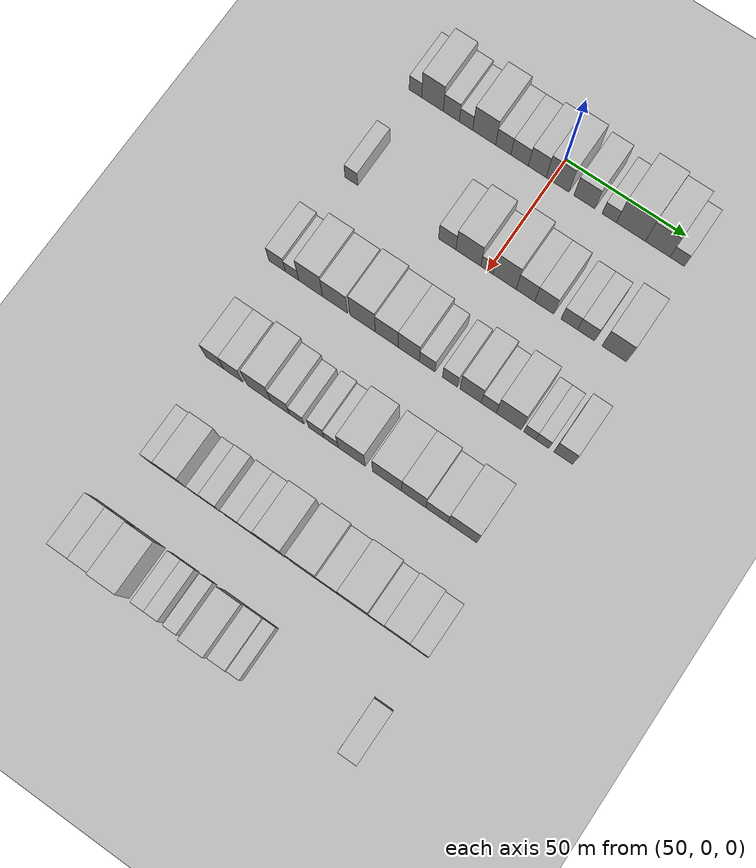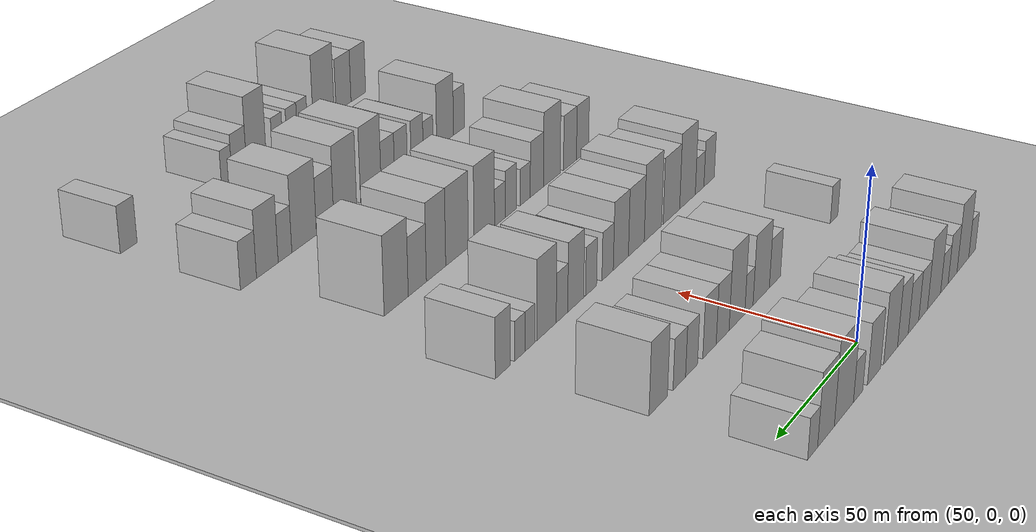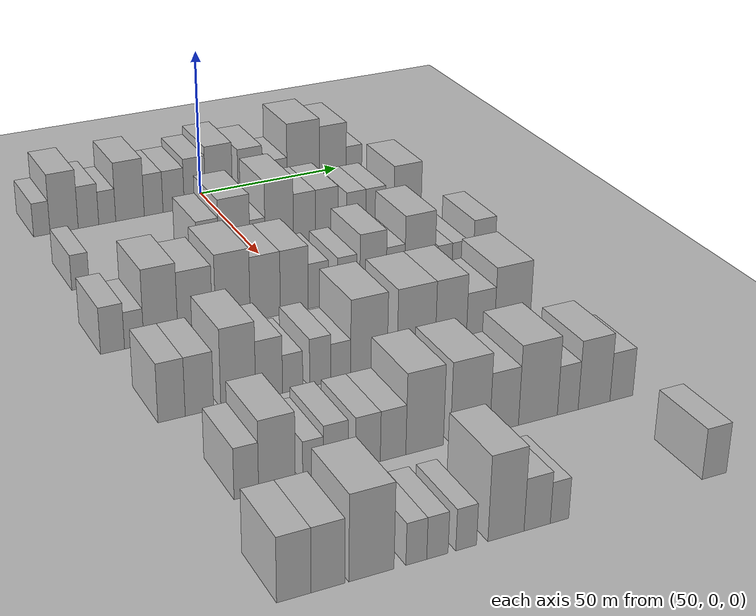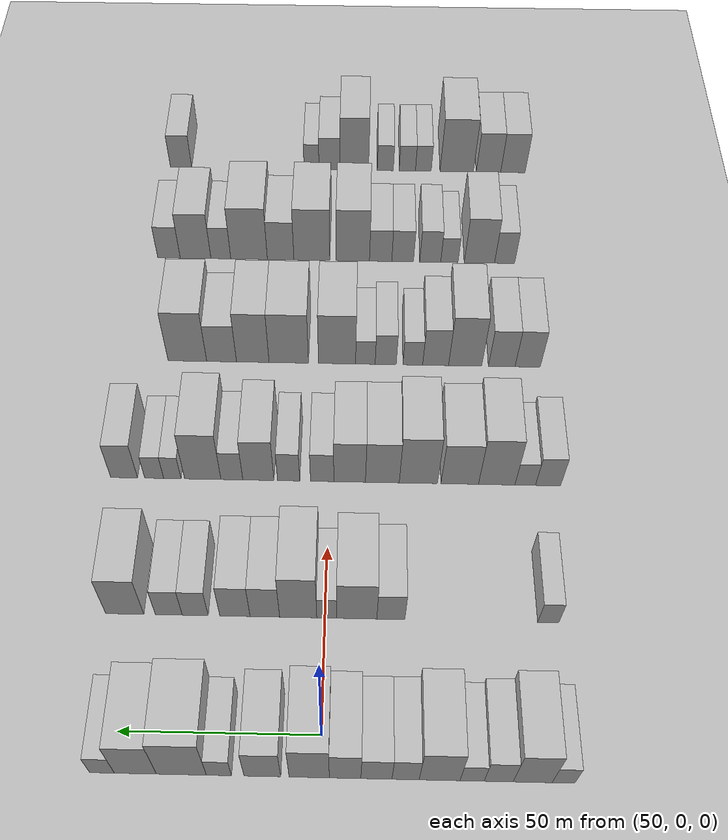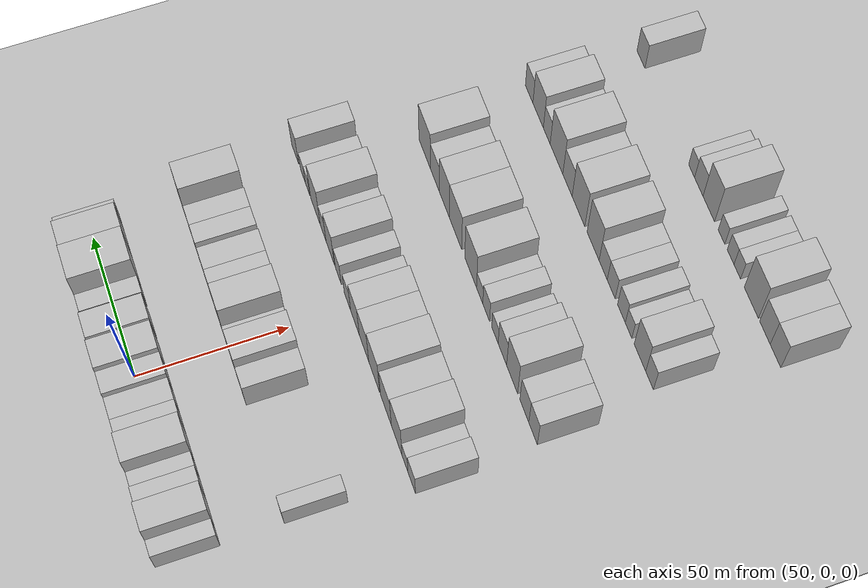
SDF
<sdf version="1.6">
 <world name="default">
  <include><name>ground_plane_1</name><uri>model://HANNAS_ground_plane</uri></include>
  <include>
   <name>ground_plane_2</name>
   <uri>model://HANNAS_ground_plane</uri>
   <pose>100 0 0  0 0 0</pose>
  </include>
  <model name="building_60">
   <static>1</static>
   <pose>50.0000 -57.6979 0 0.000000 0.000000 0.000000</pose>
   <link name="link">
    <pose>0 0 6.00 0 0 0</pose>
    <collision name="collision"><geometry><box><size>20.0000 5.3887 12.0000</size></box></geometry></collision>
    <visual name="visual">
     <cast_shadows>0</cast_shadows>
     <geometry><box><size>20.0000 5.3887 12.0000</size></box></geometry>
     <material>
      <script>
       <uri>model://HANNAS_wall/materials/scripts</uri>
       <uri>model://HANNAS_wall/materials/textures</uri>
       <name>vrc/HANNAS_wall</name>
      </script>
     </material>
    </visual>
   </link>
  </model>
  <model name="building_61">
   <static>1</static>
   <pose>50.0000 -50.3611 0 0.000000 0.000000 0.000000</pose>
   <link name="link">
    <pose>0 0 10.50 0 0 0</pose>
    <collision name="collision"><geometry><box><size>20.0000 9.2848 21.0000</size></box></geometry></collision>
    <visual name="visual">
     <cast_shadows>0</cast_shadows>
     <geometry><box><size>20.0000 9.2848 21.0000</size></box></geometry>
     <material>
      <script>
       <uri>model://HANNAS_wall/materials/scripts</uri>
       <uri>model://HANNAS_wall/materials/textures</uri>
       <name>vrc/HANNAS_wall</name>
      </script>
     </material>
    </visual>
   </link>
  </model>
  <model name="building_62">
   <static>1</static>
   <pose>50.0000 -42.2896 0 0.000000 0.000000 0.000000</pose>
   <link name="link">
    <pose>0 0 7.50 0 0 0</pose>
    <collision name="collision"><geometry><box><size>20.0000 6.8582 15.0000</size></box></geometry></collision>
    <visual name="visual">
     <cast_shadows>0</cast_shadows>
     <geometry><box><size>20.0000 6.8582 15.0000</size></box></geometry>
     <material>
      <script>
       <uri>model://HANNAS_wall/materials/scripts</uri>
       <uri>model://HANNAS_wall/materials/textures</uri>
       <name>vrc/HANNAS_wall</name>
      </script>
     </material>
    </visual>
   </link>
  </model>
  <model name="building_63">
   <static>1</static>
   <pose>50.0000 -35.9948 0 0.000000 0.000000 0.000000</pose>
   <link name="link">
    <pose>0 0 6.00 0 0 0</pose>
    <collision name="collision"><geometry><box><size>20.0000 5.7316 12.0000</size></box></geometry></collision>
    <visual name="visual">
     <cast_shadows>0</cast_shadows>
     <geometry><box><size>20.0000 5.7316 12.0000</size></box></geometry>
     <material>
      <script>
       <uri>model://HANNAS_wall/materials/scripts</uri>
       <uri>model://HANNAS_wall/materials/textures</uri>
       <name>vrc/HANNAS_wall</name>
      </script>
     </material>
    </visual>
   </link>
  </model>
  <model name="building_64">
   <static>1</static>
   <pose>50.0000 -28.2666 0 0.000000 0.000000 0.000000</pose>
   <link name="link">
    <pose>0 0 10.50 0 0 0</pose>
    <collision name="collision"><geometry><box><size>20.0000 9.7247 21.0000</size></box></geometry></collision>
    <visual name="visual">
     <cast_shadows>0</cast_shadows>
     <geometry><box><size>20.0000 9.7247 21.0000</size></box></geometry>
     <material>
      <script>
       <uri>model://HANNAS_wall/materials/scripts</uri>
       <uri>model://HANNAS_wall/materials/textures</uri>
       <name>vrc/HANNAS_wall</name>
      </script>
     </material>
    </visual>
   </link>
  </model>
  <model name="building_65">
   <static>1</static>
   <pose>50.0000 -20.1713 0 0.000000 0.000000 0.000000</pose>
   <link name="link">
    <pose>0 0 7.50 0 0 0</pose>
    <collision name="collision"><geometry><box><size>20.0000 6.4660 15.0000</size></box></geometry></collision>
    <visual name="visual">
     <cast_shadows>0</cast_shadows>
     <geometry><box><size>20.0000 6.4660 15.0000</size></box></geometry>
     <material>
      <script>
       <uri>model://HANNAS_wall/materials/scripts</uri>
       <uri>model://HANNAS_wall/materials/textures</uri>
       <name>vrc/HANNAS_wall</name>
      </script>
     </material>
    </visual>
   </link>
  </model>
  <model name="building_66">
   <static>1</static>
   <pose>50.0000 -13.2347 0 0.000000 0.000000 0.000000</pose>
   <link name="link">
    <pose>0 0 7.50 0 0 0</pose>
    <collision name="collision"><geometry><box><size>20.0000 7.4073 15.0000</size></box></geometry></collision>
    <visual name="visual">
     <cast_shadows>0</cast_shadows>
     <geometry><box><size>20.0000 7.4073 15.0000</size></box></geometry>
     <material>
      <script>
       <uri>model://HANNAS_wall/materials/scripts</uri>
       <uri>model://HANNAS_wall/materials/textures</uri>
       <name>vrc/HANNAS_wall</name>
      </script>
     </material>
    </visual>
   </link>
  </model>
  <model name="building_67">
   <static>1</static>
   <pose>50.0000 -5.7749 0 0.000000 0.000000 0.000000</pose>
   <link name="link">
    <pose>0 0 9.00 0 0 0</pose>
    <collision name="collision"><geometry><box><size>20.0000 7.5123 18.0000</size></box></geometry></collision>
    <visual name="visual">
     <cast_shadows>0</cast_shadows>
     <geometry><box><size>20.0000 7.5123 18.0000</size></box></geometry>
     <material>
      <script>
       <uri>model://HANNAS_wall/materials/scripts</uri>
       <uri>model://HANNAS_wall/materials/textures</uri>
       <name>vrc/HANNAS_wall</name>
      </script>
     </material>
    </visual>
   </link>
  </model>
  <model name="building_68">
   <static>1</static>
   <pose>50.0000 2.7636 0 0.000000 0.000000 0.000000</pose>
   <link name="link">
    <pose>0 0 10.50 0 0 0</pose>
    <collision name="collision"><geometry><box><size>20.0000 9.5645 21.0000</size></box></geometry></collision>
    <visual name="visual">
     <cast_shadows>0</cast_shadows>
     <geometry><box><size>20.0000 9.5645 21.0000</size></box></geometry>
     <material>
      <script>
       <uri>model://HANNAS_wall/materials/scripts</uri>
       <uri>model://HANNAS_wall/materials/textures</uri>
       <name>vrc/HANNAS_wall</name>
      </script>
     </material>
    </visual>
   </link>
  </model>
  <model name="building_69">
   <static>1</static>
   <pose>50.0000 13.9163 0 0.000000 0.000000 0.000000</pose>
   <link name="link">
    <pose>0 0 9.00 0 0 0</pose>
    <collision name="collision"><geometry><box><size>20.0000 8.7409 18.0000</size></box></geometry></collision>
    <visual name="visual">
     <cast_shadows>0</cast_shadows>
     <geometry><box><size>20.0000 8.7409 18.0000</size></box></geometry>
     <material>
      <script>
       <uri>model://HANNAS_wall/materials/scripts</uri>
       <uri>model://HANNAS_wall/materials/textures</uri>
       <name>vrc/HANNAS_wall</name>
      </script>
     </material>
    </visual>
   </link>
  </model>
  <model name="building_70">
   <static>1</static>
   <pose>50.0000 24.2809 0 0.000000 0.000000 0.000000</pose>
   <link name="link">
    <pose>0 0 6.00 0 0 0</pose>
    <collision name="collision"><geometry><box><size>20.0000 5.9884 12.0000</size></box></geometry></collision>
    <visual name="visual">
     <cast_shadows>0</cast_shadows>
     <geometry><box><size>20.0000 5.9884 12.0000</size></box></geometry>
     <material>
      <script>
       <uri>model://HANNAS_wall/materials/scripts</uri>
       <uri>model://HANNAS_wall/materials/textures</uri>
       <name>vrc/HANNAS_wall</name>
      </script>
     </material>
    </visual>
   </link>
  </model>
  <model name="building_71">
   <static>1</static>
   <pose>50.0000 33.2430 0 0.000000 0.000000 0.000000</pose>
   <link name="link">
    <pose>0 0 12.00 0 0 0</pose>
    <collision name="collision"><geometry><box><size>20.0000 11.9358 24.0000</size></box></geometry></collision>
    <visual name="visual">
     <cast_shadows>0</cast_shadows>
     <geometry><box><size>20.0000 11.9358 24.0000</size></box></geometry>
     <material>
      <script>
       <uri>model://HANNAS_wall/materials/scripts</uri>
       <uri>model://HANNAS_wall/materials/textures</uri>
       <name>vrc/HANNAS_wall</name>
      </script>
     </material>
    </visual>
   </link>
  </model>
  <model name="building_72">
   <static>1</static>
   <pose>50.0000 44.2532 0 0.000000 0.000000 0.000000</pose>
   <link name="link">
    <pose>0 0 10.50 0 0 0</pose>
    <collision name="collision"><geometry><box><size>20.0000 10.0846 21.0000</size></box></geometry></collision>
    <visual name="visual">
     <cast_shadows>0</cast_shadows>
     <geometry><box><size>20.0000 10.0846 21.0000</size></box></geometry>
     <material>
      <script>
       <uri>model://HANNAS_wall/materials/scripts</uri>
       <uri>model://HANNAS_wall/materials/textures</uri>
       <name>vrc/HANNAS_wall</name>
      </script>
     </material>
    </visual>
   </link>
  </model>
  <model name="building_73">
   <static>1</static>
   <pose>50.0000 52.2478 0 0.000000 0.000000 0.000000</pose>
   <link name="link">
    <pose>0 0 6.00 0 0 0</pose>
    <collision name="collision"><geometry><box><size>20.0000 5.9046 12.0000</size></box></geometry></collision>
    <visual name="visual">
     <cast_shadows>0</cast_shadows>
     <geometry><box><size>20.0000 5.9046 12.0000</size></box></geometry>
     <material>
      <script>
       <uri>model://HANNAS_wall/materials/scripts</uri>
       <uri>model://HANNAS_wall/materials/textures</uri>
       <name>vrc/HANNAS_wall</name>
      </script>
     </material>
    </visual>
   </link>
  </model>
  <model name="building_202">
   <static>1</static>
   <pose>90.0000 -57.4896 0 0.000000 0.000000 0.000000</pose>
   <link name="link">
    <pose>0 0 6.00 0 0 0</pose>
    <collision name="collision"><geometry><box><size>20.0000 5.4498 12.0000</size></box></geometry></collision>
    <visual name="visual">
     <cast_shadows>0</cast_shadows>
     <geometry><box><size>20.0000 5.4498 12.0000</size></box></geometry>
     <material>
      <script>
       <uri>model://HANNAS_wall/materials/scripts</uri>
       <uri>model://HANNAS_wall/materials/textures</uri>
       <name>vrc/HANNAS_wall</name>
      </script>
     </material>
    </visual>
   </link>
  </model>
  <model name="building_203">
   <static>1</static>
   <pose>90.0000 -16.8949 0 0.000000 0.000000 0.000000</pose>
   <link name="link">
    <pose>0 0 7.50 0 0 0</pose>
    <collision name="collision"><geometry><box><size>20.0000 7.2466 15.0000</size></box></geometry></collision>
    <visual name="visual">
     <cast_shadows>0</cast_shadows>
     <geometry><box><size>20.0000 7.2466 15.0000</size></box></geometry>
     <material>
      <script>
       <uri>model://HANNAS_wall/materials/scripts</uri>
       <uri>model://HANNAS_wall/materials/textures</uri>
       <name>vrc/HANNAS_wall</name>
      </script>
     </material>
    </visual>
   </link>
  </model>
  <model name="building_204">
   <static>1</static>
   <pose>90.0000 -8.0760 0 0.000000 0.000000 0.000000</pose>
   <link name="link">
    <pose>0 0 10.50 0 0 0</pose>
    <collision name="collision"><geometry><box><size>20.0000 10.3910 21.0000</size></box></geometry></collision>
    <visual name="visual">
     <cast_shadows>0</cast_shadows>
     <geometry><box><size>20.0000 10.3910 21.0000</size></box></geometry>
     <material>
      <script>
       <uri>model://HANNAS_wall/materials/scripts</uri>
       <uri>model://HANNAS_wall/materials/textures</uri>
       <name>vrc/HANNAS_wall</name>
      </script>
     </material>
    </visual>
   </link>
  </model>
  <model name="building_205">
   <static>1</static>
   <pose>90.0000 -0.3212 0 0.000000 0.000000 0.000000</pose>
   <link name="link">
    <pose>0 0 6.00 0 0 0</pose>
    <collision name="collision"><geometry><box><size>20.0000 5.1186 12.0000</size></box></geometry></collision>
    <visual name="visual">
     <cast_shadows>0</cast_shadows>
     <geometry><box><size>20.0000 5.1186 12.0000</size></box></geometry>
     <material>
      <script>
       <uri>model://HANNAS_wall/materials/scripts</uri>
       <uri>model://HANNAS_wall/materials/textures</uri>
       <name>vrc/HANNAS_wall</name>
      </script>
     </material>
    </visual>
   </link>
  </model>
  <model name="building_206">
   <static>1</static>
   <pose>90.0000 7.0396 0 0.000000 0.000000 0.000000</pose>
   <link name="link">
    <pose>0 0 12.00 0 0 0</pose>
    <collision name="collision"><geometry><box><size>20.0000 9.6031 24.0000</size></box></geometry></collision>
    <visual name="visual">
     <cast_shadows>0</cast_shadows>
     <geometry><box><size>20.0000 9.6031 24.0000</size></box></geometry>
     <material>
      <script>
       <uri>model://HANNAS_wall/materials/scripts</uri>
       <uri>model://HANNAS_wall/materials/textures</uri>
       <name>vrc/HANNAS_wall</name>
      </script>
     </material>
    </visual>
   </link>
  </model>
  <model name="building_207">
   <static>1</static>
   <pose>90.0000 15.6660 0 0.000000 0.000000 0.000000</pose>
   <link name="link">
    <pose>0 0 9.00 0 0 0</pose>
    <collision name="collision"><geometry><box><size>20.0000 7.6497 18.0000</size></box></geometry></collision>
    <visual name="visual">
     <cast_shadows>0</cast_shadows>
     <geometry><box><size>20.0000 7.6497 18.0000</size></box></geometry>
     <material>
      <script>
       <uri>model://HANNAS_wall/materials/scripts</uri>
       <uri>model://HANNAS_wall/materials/textures</uri>
       <name>vrc/HANNAS_wall</name>
      </script>
     </material>
    </visual>
   </link>
  </model>
  <model name="building_208">
   <static>1</static>
   <pose>90.0000 23.4075 0 0.000000 0.000000 0.000000</pose>
   <link name="link">
    <pose>0 0 9.00 0 0 0</pose>
    <collision name="collision"><geometry><box><size>20.0000 7.8333 18.0000</size></box></geometry></collision>
    <visual name="visual">
     <cast_shadows>0</cast_shadows>
     <geometry><box><size>20.0000 7.8333 18.0000</size></box></geometry>
     <material>
      <script>
       <uri>model://HANNAS_wall/materials/scripts</uri>
       <uri>model://HANNAS_wall/materials/textures</uri>
       <name>vrc/HANNAS_wall</name>
      </script>
     </material>
    </visual>
   </link>
  </model>
  <model name="building_209">
   <static>1</static>
   <pose>90.0000 33.6929 0 0.000000 0.000000 0.000000</pose>
   <link name="link">
    <pose>0 0 7.50 0 0 0</pose>
    <collision name="collision"><geometry><box><size>20.0000 6.7376 15.0000</size></box></geometry></collision>
    <visual name="visual">
     <cast_shadows>0</cast_shadows>
     <geometry><box><size>20.0000 6.7376 15.0000</size></box></geometry>
     <material>
      <script>
       <uri>model://HANNAS_wall/materials/scripts</uri>
       <uri>model://HANNAS_wall/materials/textures</uri>
       <name>vrc/HANNAS_wall</name>
      </script>
     </material>
    </visual>
   </link>
  </model>
  <model name="building_210">
   <static>1</static>
   <pose>90.0000 40.5470 0 0.000000 0.000000 0.000000</pose>
   <link name="link">
    <pose>0 0 7.50 0 0 0</pose>
    <collision name="collision"><geometry><box><size>20.0000 6.9706 15.0000</size></box></geometry></collision>
    <visual name="visual">
     <cast_shadows>0</cast_shadows>
     <geometry><box><size>20.0000 6.9706 15.0000</size></box></geometry>
     <material>
      <script>
       <uri>model://HANNAS_wall/materials/scripts</uri>
       <uri>model://HANNAS_wall/materials/textures</uri>
       <name>vrc/HANNAS_wall</name>
      </script>
     </material>
    </visual>
   </link>
  </model>
  <model name="building_211">
   <static>1</static>
   <pose>90.0000 51.9845 0 0.000000 0.000000 0.000000</pose>
   <link name="link">
    <pose>0 0 10.50 0 0 0</pose>
    <collision name="collision"><geometry><box><size>20.0000 9.9043 21.0000</size></box></geometry></collision>
    <visual name="visual">
     <cast_shadows>0</cast_shadows>
     <geometry><box><size>20.0000 9.9043 21.0000</size></box></geometry>
     <material>
      <script>
       <uri>model://HANNAS_wall/materials/scripts</uri>
       <uri>model://HANNAS_wall/materials/textures</uri>
       <name>vrc/HANNAS_wall</name>
      </script>
     </material>
    </visual>
   </link>
  </model>
  <model name="building_335">
   <static>1</static>
   <pose>130.0000 -60.8172 0 0.000000 0.000000 0.000000</pose>
   <link name="link">
    <pose>0 0 7.50 0 0 0</pose>
    <collision name="collision"><geometry><box><size>20.0000 6.9711 15.0000</size></box></geometry></collision>
    <visual name="visual">
     <cast_shadows>0</cast_shadows>
     <geometry><box><size>20.0000 6.9711 15.0000</size></box></geometry>
     <material>
      <script>
       <uri>model://HANNAS_wall/materials/scripts</uri>
       <uri>model://HANNAS_wall/materials/textures</uri>
       <name>vrc/HANNAS_wall</name>
      </script>
     </material>
    </visual>
   </link>
  </model>
  <model name="building_336">
   <static>1</static>
   <pose>130.0000 -54.4874 0 0.000000 0.000000 0.000000</pose>
   <link name="link">
    <pose>0 0 6.00 0 0 0</pose>
    <collision name="collision"><geometry><box><size>20.0000 5.6887 12.0000</size></box></geometry></collision>
    <visual name="visual">
     <cast_shadows>0</cast_shadows>
     <geometry><box><size>20.0000 5.6887 12.0000</size></box></geometry>
     <material>
      <script>
       <uri>model://HANNAS_wall/materials/scripts</uri>
       <uri>model://HANNAS_wall/materials/textures</uri>
       <name>vrc/HANNAS_wall</name>
      </script>
     </material>
    </visual>
   </link>
  </model>
  <model name="building_337">
   <static>1</static>
   <pose>130.0000 -46.5720 0 0.000000 0.000000 0.000000</pose>
   <link name="link">
    <pose>0 0 12.00 0 0 0</pose>
    <collision name="collision"><geometry><box><size>20.0000 10.1422 24.0000</size></box></geometry></collision>
    <visual name="visual">
     <cast_shadows>0</cast_shadows>
     <geometry><box><size>20.0000 10.1422 24.0000</size></box></geometry>
     <material>
      <script>
       <uri>model://HANNAS_wall/materials/scripts</uri>
       <uri>model://HANNAS_wall/materials/textures</uri>
       <name>vrc/HANNAS_wall</name>
      </script>
     </material>
    </visual>
   </link>
  </model>
  <model name="building_338">
   <static>1</static>
   <pose>130.0000 -36.2806 0 0.000000 0.000000 0.000000</pose>
   <link name="link">
    <pose>0 0 10.50 0 0 0</pose>
    <collision name="collision"><geometry><box><size>20.0000 10.4406 21.0000</size></box></geometry></collision>
    <visual name="visual">
     <cast_shadows>0</cast_shadows>
     <geometry><box><size>20.0000 10.4406 21.0000</size></box></geometry>
     <material>
      <script>
       <uri>model://HANNAS_wall/materials/scripts</uri>
       <uri>model://HANNAS_wall/materials/textures</uri>
       <name>vrc/HANNAS_wall</name>
      </script>
     </material>
    </visual>
   </link>
  </model>
  <model name="building_339">
   <static>1</static>
   <pose>130.0000 -24.7656 0 0.000000 0.000000 0.000000</pose>
   <link name="link">
    <pose>0 0 12.00 0 0 0</pose>
    <collision name="collision"><geometry><box><size>20.0000 10.5893 24.0000</size></box></geometry></collision>
    <visual name="visual">
     <cast_shadows>0</cast_shadows>
     <geometry><box><size>20.0000 10.5893 24.0000</size></box></geometry>
     <material>
      <script>
       <uri>model://HANNAS_wall/materials/scripts</uri>
       <uri>model://HANNAS_wall/materials/textures</uri>
       <name>vrc/HANNAS_wall</name>
      </script>
     </material>
    </visual>
   </link>
  </model>
  <model name="building_340">
   <static>1</static>
   <pose>130.0000 -14.7515 0 0.000000 0.000000 0.000000</pose>
   <link name="link">
    <pose>0 0 10.50 0 0 0</pose>
    <collision name="collision"><geometry><box><size>20.0000 9.4389 21.0000</size></box></geometry></collision>
    <visual name="visual">
     <cast_shadows>0</cast_shadows>
     <geometry><box><size>20.0000 9.4389 21.0000</size></box></geometry>
     <material>
      <script>
       <uri>model://HANNAS_wall/materials/scripts</uri>
       <uri>model://HANNAS_wall/materials/textures</uri>
       <name>vrc/HANNAS_wall</name>
      </script>
     </material>
    </visual>
   </link>
  </model>
  <model name="building_341">
   <static>1</static>
   <pose>130.0000 -5.6271 0 0.000000 0.000000 0.000000</pose>
   <link name="link">
    <pose>0 0 10.50 0 0 0</pose>
    <collision name="collision"><geometry><box><size>20.0000 8.8099 21.0000</size></box></geometry></collision>
    <visual name="visual">
     <cast_shadows>0</cast_shadows>
     <geometry><box><size>20.0000 8.8099 21.0000</size></box></geometry>
     <material>
      <script>
       <uri>model://HANNAS_wall/materials/scripts</uri>
       <uri>model://HANNAS_wall/materials/textures</uri>
       <name>vrc/HANNAS_wall</name>
      </script>
     </material>
    </visual>
   </link>
  </model>
  <model name="building_342">
   <static>1</static>
   <pose>130.0000 2.0201 0 0.000000 0.000000 0.000000</pose>
   <link name="link">
    <pose>0 0 7.50 0 0 0</pose>
    <collision name="collision"><geometry><box><size>20.0000 6.4845 15.0000</size></box></geometry></collision>
    <visual name="visual">
     <cast_shadows>0</cast_shadows>
     <geometry><box><size>20.0000 6.4845 15.0000</size></box></geometry>
     <material>
      <script>
       <uri>model://HANNAS_wall/materials/scripts</uri>
       <uri>model://HANNAS_wall/materials/textures</uri>
       <name>vrc/HANNAS_wall</name>
      </script>
     </material>
    </visual>
   </link>
  </model>
  <model name="building_343">
   <static>1</static>
   <pose>130.0000 11.3536 0 0.000000 0.000000 0.000000</pose>
   <link name="link">
    <pose>0 0 7.50 0 0 0</pose>
    <collision name="collision"><geometry><box><size>20.0000 6.1825 15.0000</size></box></geometry></collision>
    <visual name="visual">
     <cast_shadows>0</cast_shadows>
     <geometry><box><size>20.0000 6.1825 15.0000</size></box></geometry>
     <material>
      <script>
       <uri>model://HANNAS_wall/materials/scripts</uri>
       <uri>model://HANNAS_wall/materials/textures</uri>
       <name>vrc/HANNAS_wall</name>
      </script>
     </material>
    </visual>
   </link>
  </model>
  <model name="building_344">
   <static>1</static>
   <pose>130.0000 19.7942 0 0.000000 0.000000 0.000000</pose>
   <link name="link">
    <pose>0 0 10.50 0 0 0</pose>
    <collision name="collision"><geometry><box><size>20.0000 8.6985 21.0000</size></box></geometry></collision>
    <visual name="visual">
     <cast_shadows>0</cast_shadows>
     <geometry><box><size>20.0000 8.6985 21.0000</size></box></geometry>
     <material>
      <script>
       <uri>model://HANNAS_wall/materials/scripts</uri>
       <uri>model://HANNAS_wall/materials/textures</uri>
       <name>vrc/HANNAS_wall</name>
      </script>
     </material>
    </visual>
   </link>
  </model>
  <model name="building_345">
   <static>1</static>
   <pose>130.0000 27.2043 0 0.000000 0.000000 0.000000</pose>
   <link name="link">
    <pose>0 0 7.50 0 0 0</pose>
    <collision name="collision"><geometry><box><size>20.0000 6.1217 15.0000</size></box></geometry></collision>
    <visual name="visual">
     <cast_shadows>0</cast_shadows>
     <geometry><box><size>20.0000 6.1217 15.0000</size></box></geometry>
     <material>
      <script>
       <uri>model://HANNAS_wall/materials/scripts</uri>
       <uri>model://HANNAS_wall/materials/textures</uri>
       <name>vrc/HANNAS_wall</name>
      </script>
     </material>
    </visual>
   </link>
  </model>
  <model name="building_346">
   <static>1</static>
   <pose>130.0000 35.3455 0 0.000000 0.000000 0.000000</pose>
   <link name="link">
    <pose>0 0 12.00 0 0 0</pose>
    <collision name="collision"><geometry><box><size>20.0000 10.1606 24.0000</size></box></geometry></collision>
    <visual name="visual">
     <cast_shadows>0</cast_shadows>
     <geometry><box><size>20.0000 10.1606 24.0000</size></box></geometry>
     <material>
      <script>
       <uri>model://HANNAS_wall/materials/scripts</uri>
       <uri>model://HANNAS_wall/materials/textures</uri>
       <name>vrc/HANNAS_wall</name>
      </script>
     </material>
    </visual>
   </link>
  </model>
  <model name="building_347">
   <static>1</static>
   <pose>130.0000 43.8545 0 0.000000 0.000000 0.000000</pose>
   <link name="link">
    <pose>0 0 6.00 0 0 0</pose>
    <collision name="collision"><geometry><box><size>20.0000 4.8574 12.0000</size></box></geometry></collision>
    <visual name="visual">
     <cast_shadows>0</cast_shadows>
     <geometry><box><size>20.0000 4.8574 12.0000</size></box></geometry>
     <material>
      <script>
       <uri>model://HANNAS_wall/materials/scripts</uri>
       <uri>model://HANNAS_wall/materials/textures</uri>
       <name>vrc/HANNAS_wall</name>
      </script>
     </material>
    </visual>
   </link>
  </model>
  <model name="building_348">
   <static>1</static>
   <pose>130.0000 48.9297 0 0.000000 0.000000 0.000000</pose>
   <link name="link">
    <pose>0 0 6.00 0 0 0</pose>
    <collision name="collision"><geometry><box><size>20.0000 5.2930 12.0000</size></box></geometry></collision>
    <visual name="visual">
     <cast_shadows>0</cast_shadows>
     <geometry><box><size>20.0000 5.2930 12.0000</size></box></geometry>
     <material>
      <script>
       <uri>model://HANNAS_wall/materials/scripts</uri>
       <uri>model://HANNAS_wall/materials/textures</uri>
       <name>vrc/HANNAS_wall</name>
      </script>
     </material>
    </visual>
   </link>
  </model>
  <model name="building_349">
   <static>1</static>
   <pose>130.0000 57.3346 0 0.000000 0.000000 0.000000</pose>
   <link name="link">
    <pose>0 0 9.00 0 0 0</pose>
    <collision name="collision"><geometry><box><size>20.0000 7.5169 18.0000</size></box></geometry></collision>
    <visual name="visual">
     <cast_shadows>0</cast_shadows>
     <geometry><box><size>20.0000 7.5169 18.0000</size></box></geometry>
     <material>
      <script>
       <uri>model://HANNAS_wall/materials/scripts</uri>
       <uri>model://HANNAS_wall/materials/textures</uri>
       <name>vrc/HANNAS_wall</name>
      </script>
     </material>
    </visual>
   </link>
  </model>
  <model name="building_474">
   <static>1</static>
   <pose>170.0000 -58.1395 0 0.000000 0.000000 0.000000</pose>
   <link name="link">
    <pose>0 0 9.00 0 0 0</pose>
    <collision name="collision"><geometry><box><size>20.0000 7.5047 18.0000</size></box></geometry></collision>
    <visual name="visual">
     <cast_shadows>0</cast_shadows>
     <geometry><box><size>20.0000 7.5047 18.0000</size></box></geometry>
     <material>
      <script>
       <uri>model://HANNAS_wall/materials/scripts</uri>
       <uri>model://HANNAS_wall/materials/textures</uri>
       <name>vrc/HANNAS_wall</name>
      </script>
     </material>
    </visual>
   </link>
  </model>
  <model name="building_475">
   <static>1</static>
   <pose>170.0000 -50.4210 0 0.000000 0.000000 0.000000</pose>
   <link name="link">
    <pose>0 0 9.00 0 0 0</pose>
    <collision name="collision"><geometry><box><size>20.0000 7.9324 18.0000</size></box></geometry></collision>
    <visual name="visual">
     <cast_shadows>0</cast_shadows>
     <geometry><box><size>20.0000 7.9324 18.0000</size></box></geometry>
     <material>
      <script>
       <uri>model://HANNAS_wall/materials/scripts</uri>
       <uri>model://HANNAS_wall/materials/textures</uri>
       <name>vrc/HANNAS_wall</name>
      </script>
     </material>
    </visual>
   </link>
  </model>
  <model name="building_476">
   <static>1</static>
   <pose>170.0000 -39.5075 0 0.000000 0.000000 0.000000</pose>
   <link name="link">
    <pose>0 0 12.00 0 0 0</pose>
    <collision name="collision"><geometry><box><size>20.0000 9.8945 24.0000</size></box></geometry></collision>
    <visual name="visual">
     <cast_shadows>0</cast_shadows>
     <geometry><box><size>20.0000 9.8945 24.0000</size></box></geometry>
     <material>
      <script>
       <uri>model://HANNAS_wall/materials/scripts</uri>
       <uri>model://HANNAS_wall/materials/textures</uri>
       <name>vrc/HANNAS_wall</name>
      </script>
     </material>
    </visual>
   </link>
  </model>
  <model name="building_477">
   <static>1</static>
   <pose>170.0000 -30.7029 0 0.000000 0.000000 0.000000</pose>
   <link name="link">
    <pose>0 0 9.00 0 0 0</pose>
    <collision name="collision"><geometry><box><size>20.0000 7.7148 18.0000</size></box></geometry></collision>
    <visual name="visual">
     <cast_shadows>0</cast_shadows>
     <geometry><box><size>20.0000 7.7148 18.0000</size></box></geometry>
     <material>
      <script>
       <uri>model://HANNAS_wall/materials/scripts</uri>
       <uri>model://HANNAS_wall/materials/textures</uri>
       <name>vrc/HANNAS_wall</name>
      </script>
     </material>
    </visual>
   </link>
  </model>
  <model name="building_478">
   <static>1</static>
   <pose>170.0000 -23.9001 0 0.000000 0.000000 0.000000</pose>
   <link name="link">
    <pose>0 0 6.00 0 0 0</pose>
    <collision name="collision"><geometry><box><size>20.0000 5.8907 12.0000</size></box></geometry></collision>
    <visual name="visual">
     <cast_shadows>0</cast_shadows>
     <geometry><box><size>20.0000 5.8907 12.0000</size></box></geometry>
     <material>
      <script>
       <uri>model://HANNAS_wall/materials/scripts</uri>
       <uri>model://HANNAS_wall/materials/textures</uri>
       <name>vrc/HANNAS_wall</name>
      </script>
     </material>
    </visual>
   </link>
  </model>
  <model name="building_479">
   <static>1</static>
   <pose>170.0000 -15.8050 0 0.000000 0.000000 0.000000</pose>
   <link name="link">
    <pose>0 0 7.50 0 0 0</pose>
    <collision name="collision"><geometry><box><size>20.0000 6.2994 15.0000</size></box></geometry></collision>
    <visual name="visual">
     <cast_shadows>0</cast_shadows>
     <geometry><box><size>20.0000 6.2994 15.0000</size></box></geometry>
     <material>
      <script>
       <uri>model://HANNAS_wall/materials/scripts</uri>
       <uri>model://HANNAS_wall/materials/textures</uri>
       <name>vrc/HANNAS_wall</name>
      </script>
     </material>
    </visual>
   </link>
  </model>
  <model name="building_480">
   <static>1</static>
   <pose>170.0000 -9.7315 0 0.000000 0.000000 0.000000</pose>
   <link name="link">
    <pose>0 0 6.00 0 0 0</pose>
    <collision name="collision"><geometry><box><size>20.0000 5.8476 12.0000</size></box></geometry></collision>
    <visual name="visual">
     <cast_shadows>0</cast_shadows>
     <geometry><box><size>20.0000 5.8476 12.0000</size></box></geometry>
     <material>
      <script>
       <uri>model://HANNAS_wall/materials/scripts</uri>
       <uri>model://HANNAS_wall/materials/textures</uri>
       <name>vrc/HANNAS_wall</name>
      </script>
     </material>
    </visual>
   </link>
  </model>
  <model name="building_481">
   <static>1</static>
   <pose>170.0000 -1.2676 0 0.000000 0.000000 0.000000</pose>
   <link name="link">
    <pose>0 0 12.00 0 0 0</pose>
    <collision name="collision"><geometry><box><size>20.0000 11.0801 24.0000</size></box></geometry></collision>
    <visual name="visual">
     <cast_shadows>0</cast_shadows>
     <geometry><box><size>20.0000 11.0801 24.0000</size></box></geometry>
     <material>
      <script>
       <uri>model://HANNAS_wall/materials/scripts</uri>
       <uri>model://HANNAS_wall/materials/textures</uri>
       <name>vrc/HANNAS_wall</name>
      </script>
     </material>
    </visual>
   </link>
  </model>
  <model name="building_482">
   <static>1</static>
   <pose>170.0000 13.1661 0 0.000000 0.000000 0.000000</pose>
   <link name="link">
    <pose>0 0 12.00 0 0 0</pose>
    <collision name="collision"><geometry><box><size>20.0000 11.7874 24.0000</size></box></geometry></collision>
    <visual name="visual">
     <cast_shadows>0</cast_shadows>
     <geometry><box><size>20.0000 11.7874 24.0000</size></box></geometry>
     <material>
      <script>
       <uri>model://HANNAS_wall/materials/scripts</uri>
       <uri>model://HANNAS_wall/materials/textures</uri>
       <name>vrc/HANNAS_wall</name>
      </script>
     </material>
    </visual>
   </link>
  </model>
  <model name="building_483">
   <static>1</static>
   <pose>170.0000 23.9355 0 0.000000 0.000000 0.000000</pose>
   <link name="link">
    <pose>0 0 12.00 0 0 0</pose>
    <collision name="collision"><geometry><box><size>20.0000 9.7513 24.0000</size></box></geometry></collision>
    <visual name="visual">
     <cast_shadows>0</cast_shadows>
     <geometry><box><size>20.0000 9.7513 24.0000</size></box></geometry>
     <material>
      <script>
       <uri>model://HANNAS_wall/materials/scripts</uri>
       <uri>model://HANNAS_wall/materials/textures</uri>
       <name>vrc/HANNAS_wall</name>
      </script>
     </material>
    </visual>
   </link>
  </model>
  <model name="building_484">
   <static>1</static>
   <pose>170.0000 33.2792 0 0.000000 0.000000 0.000000</pose>
   <link name="link">
    <pose>0 0 9.00 0 0 0</pose>
    <collision name="collision"><geometry><box><size>20.0000 8.9362 18.0000</size></box></geometry></collision>
    <visual name="visual">
     <cast_shadows>0</cast_shadows>
     <geometry><box><size>20.0000 8.9362 18.0000</size></box></geometry>
     <material>
      <script>
       <uri>model://HANNAS_wall/materials/scripts</uri>
       <uri>model://HANNAS_wall/materials/textures</uri>
       <name>vrc/HANNAS_wall</name>
      </script>
     </material>
    </visual>
   </link>
  </model>
  <model name="building_485">
   <static>1</static>
   <pose>170.0000 43.5351 0 0.000000 0.000000 0.000000</pose>
   <link name="link">
    <pose>0 0 12.00 0 0 0</pose>
    <collision name="collision"><geometry><box><size>20.0000 11.5755 24.0000</size></box></geometry></collision>
    <visual name="visual">
     <cast_shadows>0</cast_shadows>
     <geometry><box><size>20.0000 11.5755 24.0000</size></box></geometry>
     <material>
      <script>
       <uri>model://HANNAS_wall/materials/scripts</uri>
       <uri>model://HANNAS_wall/materials/textures</uri>
       <name>vrc/HANNAS_wall</name>
      </script>
     </material>
    </visual>
   </link>
  </model>
  <model name="building_607">
   <static>1</static>
   <pose>210.0000 -53.7948 0 0.000000 0.000000 0.000000</pose>
   <link name="link">
    <pose>0 0 7.50 0 0 0</pose>
    <collision name="collision"><geometry><box><size>20.0000 6.3923 15.0000</size></box></geometry></collision>
    <visual name="visual">
     <cast_shadows>0</cast_shadows>
     <geometry><box><size>20.0000 6.3923 15.0000</size></box></geometry>
     <material>
      <script>
       <uri>model://HANNAS_wall/materials/scripts</uri>
       <uri>model://HANNAS_wall/materials/textures</uri>
       <name>vrc/HANNAS_wall</name>
      </script>
     </material>
    </visual>
   </link>
  </model>
  <model name="building_608">
   <static>1</static>
   <pose>210.0000 -45.7830 0 0.000000 0.000000 0.000000</pose>
   <link name="link">
    <pose>0 0 10.50 0 0 0</pose>
    <collision name="collision"><geometry><box><size>20.0000 9.6313 21.0000</size></box></geometry></collision>
    <visual name="visual">
     <cast_shadows>0</cast_shadows>
     <geometry><box><size>20.0000 9.6313 21.0000</size></box></geometry>
     <material>
      <script>
       <uri>model://HANNAS_wall/materials/scripts</uri>
       <uri>model://HANNAS_wall/materials/textures</uri>
       <name>vrc/HANNAS_wall</name>
      </script>
     </material>
    </visual>
   </link>
  </model>
  <model name="building_609">
   <static>1</static>
   <pose>210.0000 -36.2099 0 0.000000 0.000000 0.000000</pose>
   <link name="link">
    <pose>0 0 6.00 0 0 0</pose>
    <collision name="collision"><geometry><box><size>20.0000 5.5149 12.0000</size></box></geometry></collision>
    <visual name="visual">
     <cast_shadows>0</cast_shadows>
     <geometry><box><size>20.0000 5.5149 12.0000</size></box></geometry>
     <material>
      <script>
       <uri>model://HANNAS_wall/materials/scripts</uri>
       <uri>model://HANNAS_wall/materials/textures</uri>
       <name>vrc/HANNAS_wall</name>
      </script>
     </material>
    </visual>
   </link>
  </model>
  <model name="building_610">
   <static>1</static>
   <pose>210.0000 -30.1129 0 0.000000 0.000000 0.000000</pose>
   <link name="link">
    <pose>0 0 7.50 0 0 0</pose>
    <collision name="collision"><geometry><box><size>20.0000 6.6792 15.0000</size></box></geometry></collision>
    <visual name="visual">
     <cast_shadows>0</cast_shadows>
     <geometry><box><size>20.0000 6.6792 15.0000</size></box></geometry>
     <material>
      <script>
       <uri>model://HANNAS_wall/materials/scripts</uri>
       <uri>model://HANNAS_wall/materials/textures</uri>
       <name>vrc/HANNAS_wall</name>
      </script>
     </material>
    </visual>
   </link>
  </model>
  <model name="building_611">
   <static>1</static>
   <pose>210.0000 -21.3162 0 0.000000 0.000000 0.000000</pose>
   <link name="link">
    <pose>0 0 7.50 0 0 0</pose>
    <collision name="collision"><geometry><box><size>20.0000 6.9142 15.0000</size></box></geometry></collision>
    <visual name="visual">
     <cast_shadows>0</cast_shadows>
     <geometry><box><size>20.0000 6.9142 15.0000</size></box></geometry>
     <material>
      <script>
       <uri>model://HANNAS_wall/materials/scripts</uri>
       <uri>model://HANNAS_wall/materials/textures</uri>
       <name>vrc/HANNAS_wall</name>
      </script>
     </material>
    </visual>
   </link>
  </model>
  <model name="building_612">
   <static>1</static>
   <pose>210.0000 -14.2997 0 0.000000 0.000000 0.000000</pose>
   <link name="link">
    <pose>0 0 7.50 0 0 0</pose>
    <collision name="collision"><geometry><box><size>20.0000 7.1188 15.0000</size></box></geometry></collision>
    <visual name="visual">
     <cast_shadows>0</cast_shadows>
     <geometry><box><size>20.0000 7.1188 15.0000</size></box></geometry>
     <material>
      <script>
       <uri>model://HANNAS_wall/materials/scripts</uri>
       <uri>model://HANNAS_wall/materials/textures</uri>
       <name>vrc/HANNAS_wall</name>
      </script>
     </material>
    </visual>
   </link>
  </model>
  <model name="building_613">
   <static>1</static>
   <pose>210.0000 -5.4140 0 0.000000 0.000000 0.000000</pose>
   <link name="link">
    <pose>0 0 12.00 0 0 0</pose>
    <collision name="collision"><geometry><box><size>20.0000 10.6525 24.0000</size></box></geometry></collision>
    <visual name="visual">
     <cast_shadows>0</cast_shadows>
     <geometry><box><size>20.0000 10.6525 24.0000</size></box></geometry>
     <material>
      <script>
       <uri>model://HANNAS_wall/materials/scripts</uri>
       <uri>model://HANNAS_wall/materials/textures</uri>
       <name>vrc/HANNAS_wall</name>
      </script>
     </material>
    </visual>
   </link>
  </model>
  <model name="building_614">
   <static>1</static>
   <pose>210.0000 7.6380 0 0.000000 0.000000 0.000000</pose>
   <link name="link">
    <pose>0 0 12.00 0 0 0</pose>
    <collision name="collision"><geometry><box><size>20.0000 11.4515 24.0000</size></box></geometry></collision>
    <visual name="visual">
     <cast_shadows>0</cast_shadows>
     <geometry><box><size>20.0000 11.4515 24.0000</size></box></geometry>
     <material>
      <script>
       <uri>model://HANNAS_wall/materials/scripts</uri>
       <uri>model://HANNAS_wall/materials/textures</uri>
       <name>vrc/HANNAS_wall</name>
      </script>
     </material>
    </visual>
   </link>
  </model>
  <model name="building_615">
   <static>1</static>
   <pose>210.0000 17.6051 0 0.000000 0.000000 0.000000</pose>
   <link name="link">
    <pose>0 0 9.00 0 0 0</pose>
    <collision name="collision"><geometry><box><size>20.0000 8.4827 18.0000</size></box></geometry></collision>
    <visual name="visual">
     <cast_shadows>0</cast_shadows>
     <geometry><box><size>20.0000 8.4827 18.0000</size></box></geometry>
     <material>
      <script>
       <uri>model://HANNAS_wall/materials/scripts</uri>
       <uri>model://HANNAS_wall/materials/textures</uri>
       <name>vrc/HANNAS_wall</name>
      </script>
     </material>
    </visual>
   </link>
  </model>
  <model name="building_616">
   <static>1</static>
   <pose>210.0000 27.7015 0 0.000000 0.000000 0.000000</pose>
   <link name="link">
    <pose>0 0 12.00 0 0 0</pose>
    <collision name="collision"><geometry><box><size>20.0000 11.7101 24.0000</size></box></geometry></collision>
    <visual name="visual">
     <cast_shadows>0</cast_shadows>
     <geometry><box><size>20.0000 11.7101 24.0000</size></box></geometry>
     <material>
      <script>
       <uri>model://HANNAS_wall/materials/scripts</uri>
       <uri>model://HANNAS_wall/materials/textures</uri>
       <name>vrc/HANNAS_wall</name>
      </script>
     </material>
    </visual>
   </link>
  </model>
  <model name="building_617">
   <static>1</static>
   <pose>210.0000 36.7345 0 0.000000 0.000000 0.000000</pose>
   <link name="link">
    <pose>0 0 7.50 0 0 0</pose>
    <collision name="collision"><geometry><box><size>20.0000 6.3559 15.0000</size></box></geometry></collision>
    <visual name="visual">
     <cast_shadows>0</cast_shadows>
     <geometry><box><size>20.0000 6.3559 15.0000</size></box></geometry>
     <material>
      <script>
       <uri>model://HANNAS_wall/materials/scripts</uri>
       <uri>model://HANNAS_wall/materials/textures</uri>
       <name>vrc/HANNAS_wall</name>
      </script>
     </material>
    </visual>
   </link>
  </model>
  <model name="building_618">
   <static>1</static>
   <pose>210.0000 44.8343 0 0.000000 0.000000 0.000000</pose>
   <link name="link">
    <pose>0 0 10.50 0 0 0</pose>
    <collision name="collision"><geometry><box><size>20.0000 9.8438 21.0000</size></box></geometry></collision>
    <visual name="visual">
     <cast_shadows>0</cast_shadows>
     <geometry><box><size>20.0000 9.8438 21.0000</size></box></geometry>
     <material>
      <script>
       <uri>model://HANNAS_wall/materials/scripts</uri>
       <uri>model://HANNAS_wall/materials/textures</uri>
       <name>vrc/HANNAS_wall</name>
      </script>
     </material>
    </visual>
   </link>
  </model>
  <model name="building_619">
   <static>1</static>
   <pose>210.0000 53.3548 0 0.000000 0.000000 0.000000</pose>
   <link name="link">
    <pose>0 0 7.50 0 0 0</pose>
    <collision name="collision"><geometry><box><size>20.0000 7.1971 15.0000</size></box></geometry></collision>
    <visual name="visual">
     <cast_shadows>0</cast_shadows>
     <geometry><box><size>20.0000 7.1971 15.0000</size></box></geometry>
     <material>
      <script>
       <uri>model://HANNAS_wall/materials/scripts</uri>
       <uri>model://HANNAS_wall/materials/textures</uri>
       <name>vrc/HANNAS_wall</name>
      </script>
     </material>
    </visual>
   </link>
  </model>
  <model name="building_746">
   <static>1</static>
   <pose>250.0000 -59.1319 0 0.000000 0.000000 0.000000</pose>
   <link name="link">
    <pose>0 0 9.00 0 0 0</pose>
    <collision name="collision"><geometry><box><size>20.0000 8.2400 18.0000</size></box></geometry></collision>
    <visual name="visual">
     <cast_shadows>0</cast_shadows>
     <geometry><box><size>20.0000 8.2400 18.0000</size></box></geometry>
     <material>
      <script>
       <uri>model://HANNAS_wall/materials/scripts</uri>
       <uri>model://HANNAS_wall/materials/textures</uri>
       <name>vrc/HANNAS_wall</name>
      </script>
     </material>
    </visual>
   </link>
  </model>
  <model name="building_747">
   <static>1</static>
   <pose>250.0000 -50.8765 0 0.000000 0.000000 0.000000</pose>
   <link name="link">
    <pose>0 0 9.00 0 0 0</pose>
    <collision name="collision"><geometry><box><size>20.0000 8.2709 18.0000</size></box></geometry></collision>
    <visual name="visual">
     <cast_shadows>0</cast_shadows>
     <geometry><box><size>20.0000 8.2709 18.0000</size></box></geometry>
     <material>
      <script>
       <uri>model://HANNAS_wall/materials/scripts</uri>
       <uri>model://HANNAS_wall/materials/textures</uri>
       <name>vrc/HANNAS_wall</name>
      </script>
     </material>
    </visual>
   </link>
  </model>
  <model name="building_748">
   <static>1</static>
   <pose>250.0000 -40.1015 0 0.000000 0.000000 0.000000</pose>
   <link name="link">
    <pose>0 0 12.00 0 0 0</pose>
    <collision name="collision"><geometry><box><size>20.0000 11.2791 24.0000</size></box></geometry></collision>
    <visual name="visual">
     <cast_shadows>0</cast_shadows>
     <geometry><box><size>20.0000 11.2791 24.0000</size></box></geometry>
     <material>
      <script>
       <uri>model://HANNAS_wall/materials/scripts</uri>
       <uri>model://HANNAS_wall/materials/textures</uri>
       <name>vrc/HANNAS_wall</name>
      </script>
     </material>
    </visual>
   </link>
  </model>
  <model name="building_749">
   <static>1</static>
   <pose>250.0000 -28.7964 0 0.000000 0.000000 0.000000</pose>
   <link name="link">
    <pose>0 0 6.00 0 0 0</pose>
    <collision name="collision"><geometry><box><size>20.0000 5.3311 12.0000</size></box></geometry></collision>
    <visual name="visual">
     <cast_shadows>0</cast_shadows>
     <geometry><box><size>20.0000 5.3311 12.0000</size></box></geometry>
     <material>
      <script>
       <uri>model://HANNAS_wall/materials/scripts</uri>
       <uri>model://HANNAS_wall/materials/textures</uri>
       <name>vrc/HANNAS_wall</name>
      </script>
     </material>
    </visual>
   </link>
  </model>
  <model name="building_750">
   <static>1</static>
   <pose>250.0000 -23.3779 0 0.000000 0.000000 0.000000</pose>
   <link name="link">
    <pose>0 0 6.00 0 0 0</pose>
    <collision name="collision"><geometry><box><size>20.0000 5.5060 12.0000</size></box></geometry></collision>
    <visual name="visual">
     <cast_shadows>0</cast_shadows>
     <geometry><box><size>20.0000 5.5060 12.0000</size></box></geometry>
     <material>
      <script>
       <uri>model://HANNAS_wall/materials/scripts</uri>
       <uri>model://HANNAS_wall/materials/textures</uri>
       <name>vrc/HANNAS_wall</name>
      </script>
     </material>
    </visual>
   </link>
  </model>
  <model name="building_751">
   <static>1</static>
   <pose>250.0000 -15.9076 0 0.000000 0.000000 0.000000</pose>
   <link name="link">
    <pose>0 0 6.00 0 0 0</pose>
    <collision name="collision"><geometry><box><size>20.0000 5.4345 12.0000</size></box></geometry></collision>
    <visual name="visual">
     <cast_shadows>0</cast_shadows>
     <geometry><box><size>20.0000 5.4345 12.0000</size></box></geometry>
     <material>
      <script>
       <uri>model://HANNAS_wall/materials/scripts</uri>
       <uri>model://HANNAS_wall/materials/textures</uri>
       <name>vrc/HANNAS_wall</name>
      </script>
     </material>
    </visual>
   </link>
  </model>
  <model name="building_752">
   <static>1</static>
   <pose>250.0000 -5.3599 0 0.000000 0.000000 0.000000</pose>
   <link name="link">
    <pose>0 0 12.00 0 0 0</pose>
    <collision name="collision"><geometry><box><size>20.0000 9.6609 24.0000</size></box></geometry></collision>
    <visual name="visual">
     <cast_shadows>0</cast_shadows>
     <geometry><box><size>20.0000 9.6609 24.0000</size></box></geometry>
     <material>
      <script>
       <uri>model://HANNAS_wall/materials/scripts</uri>
       <uri>model://HANNAS_wall/materials/textures</uri>
       <name>vrc/HANNAS_wall</name>
      </script>
     </material>
    </visual>
   </link>
  </model>
  <model name="building_753">
   <static>1</static>
   <pose>250.0000 3.0375 0 0.000000 0.000000 0.000000</pose>
   <link name="link">
    <pose>0 0 7.50 0 0 0</pose>
    <collision name="collision"><geometry><box><size>20.0000 7.1339 15.0000</size></box></geometry></collision>
    <visual name="visual">
     <cast_shadows>0</cast_shadows>
     <geometry><box><size>20.0000 7.1339 15.0000</size></box></geometry>
     <material>
      <script>
       <uri>model://HANNAS_wall/materials/scripts</uri>
       <uri>model://HANNAS_wall/materials/textures</uri>
       <name>vrc/HANNAS_wall</name>
      </script>
     </material>
    </visual>
   </link>
  </model>
  <model name="building_754">
   <static>1</static>
   <pose>250.0000 9.1314 0 0.000000 0.000000 0.000000</pose>
   <link name="link">
    <pose>0 0 6.00 0 0 0</pose>
    <collision name="collision"><geometry><box><size>20.0000 5.0540 12.0000</size></box></geometry></collision>
    <visual name="visual">
     <cast_shadows>0</cast_shadows>
     <geometry><box><size>20.0000 5.0540 12.0000</size></box></geometry>
     <material>
      <script>
       <uri>model://HANNAS_wall/materials/scripts</uri>
       <uri>model://HANNAS_wall/materials/textures</uri>
       <name>vrc/HANNAS_wall</name>
      </script>
     </material>
    </visual>
   </link>
  </model>
  <model name="building_755">
   <static>1</static>
   <pose>250.0000 53.5057 0 0.000000 0.000000 0.000000</pose>
   <link name="link">
    <pose>0 0 7.50 0 0 0</pose>
    <collision name="collision"><geometry><box><size>20.0000 7.2315 15.0000</size></box></geometry></collision>
    <visual name="visual">
     <cast_shadows>0</cast_shadows>
     <geometry><box><size>20.0000 7.2315 15.0000</size></box></geometry>
     <material>
      <script>
       <uri>model://HANNAS_wall/materials/scripts</uri>
       <uri>model://HANNAS_wall/materials/textures</uri>
       <name>vrc/HANNAS_wall</name>
      </script>
     </material>
    </visual>
   </link>
  </model>
 </world>
</sdf>
